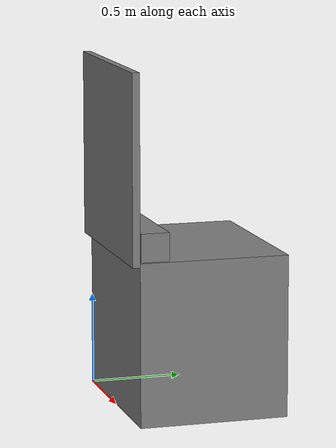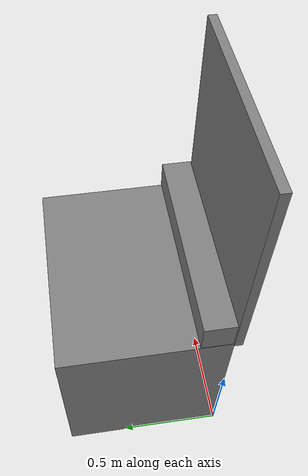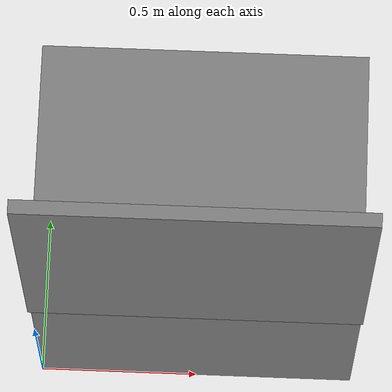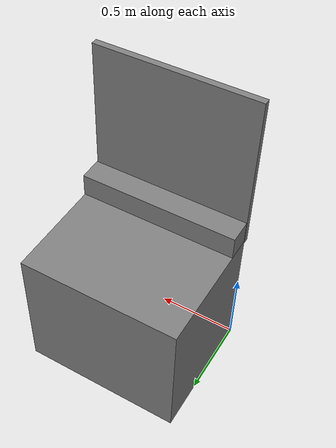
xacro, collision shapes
<?xml version="1.0" ?>
<robot name="desk" xmlns:xacro="http://www.ros.org/wiki/xacro">

  <!-- Static property -->
  <link name="desk">
    <!-- Inertial -->
    <inertial>
      <origin xyz="0.5 0.4 0.435" rpy="0 0 0" />
      <mass value="10" />
      <inertia ixx="0.1" ixy="0" ixz="0" iyy="0.1" iyz="0" izz="0.1" />
    </inertial>

    <!-- Base collision -->
    <collision name="desk_base">
      <origin xyz="0.5 0.4 0.435" rpy="0 0 0" />
      <geometry>
        <box size="1 0.8 0.87" />
      </geometry>
    </collision>

    <!-- Box collision -->
    <collision name="desk_box">
      <origin xyz="0.5 0.08 0.95" rpy="0 0 0" />
      <geometry>
        <box size="1 0.15 0.15" />
      </geometry>
    </collision>

    <!-- Back collision -->
    <collision name="desk_back">
      <origin xyz="0.5 -0.02 1.35" rpy="1.57 0 0" />
      <geometry>
        <box size="1 1.0 0.04" />
      </geometry>
    </collision>

    <!-- Visual -->
    <visual name="visual">
      <origin xyz="0 0 0" rpy="0 0 0" />
      <geometry>
        <mesh filename="file://$(find speed_controlled_ros2_ur5_interface)/models/meshes/desk.stl" scale="0.001 0.001 0.001" />
      </geometry>
      <material name="grey_material">
        <color rgba="0.5 0.5 0.5 1.0"/> <!-- Grey color, fully opaque -->
      </material>
    </visual>
  </link>

</robot>
